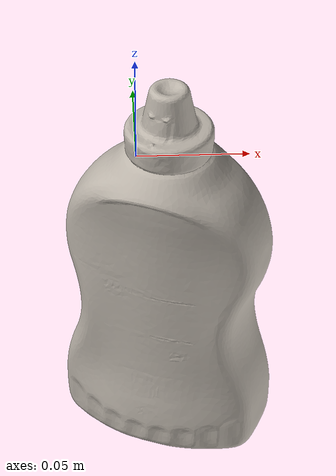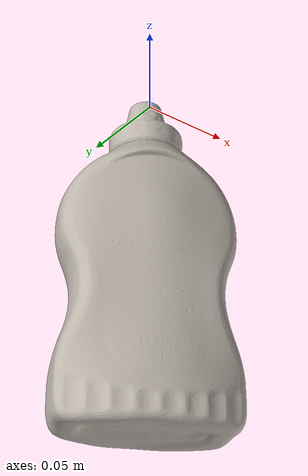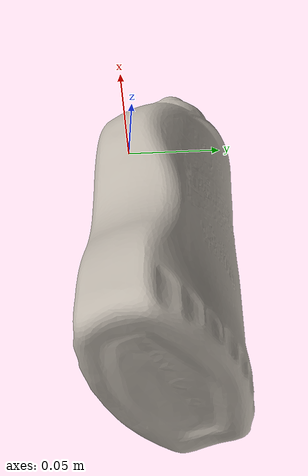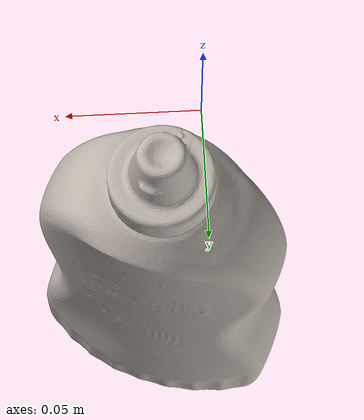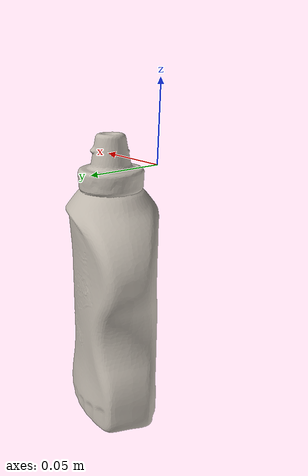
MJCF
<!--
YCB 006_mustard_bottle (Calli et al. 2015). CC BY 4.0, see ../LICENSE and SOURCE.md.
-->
<mujoco model="ycb_006_mustard_bottle">
  <compiler angle="radian" meshdir="." texturedir="."/>
  <asset>
    <texture name="mustard_bottle" type="2d" file="texture_map.png"/>
    <material name="mustard_bottle" texture="mustard_bottle"/>
    <mesh name="mustard_bottle" file="textured.obj"/>
  </asset>
  <worldbody>
    <body name="mustard_bottle">
      <freejoint name="mustard_bottle_free"/>
      <geom name="mustard_bottle_visual" type="mesh" mesh="mustard_bottle" material="mustard_bottle" pos="0.0153 0.0235 -0.0925"
            contype="0" conaffinity="0" group="2" mass="0"/>
      <geom name="mustard_bottle_collision" type="mesh" mesh="mustard_bottle" pos="0.0153 0.0235 -0.0925" mass="0.431"
            group="3" condim="4" friction="0.9 0.005 0.0001"/>
    </body>
  </worldbody>
</mujoco>
